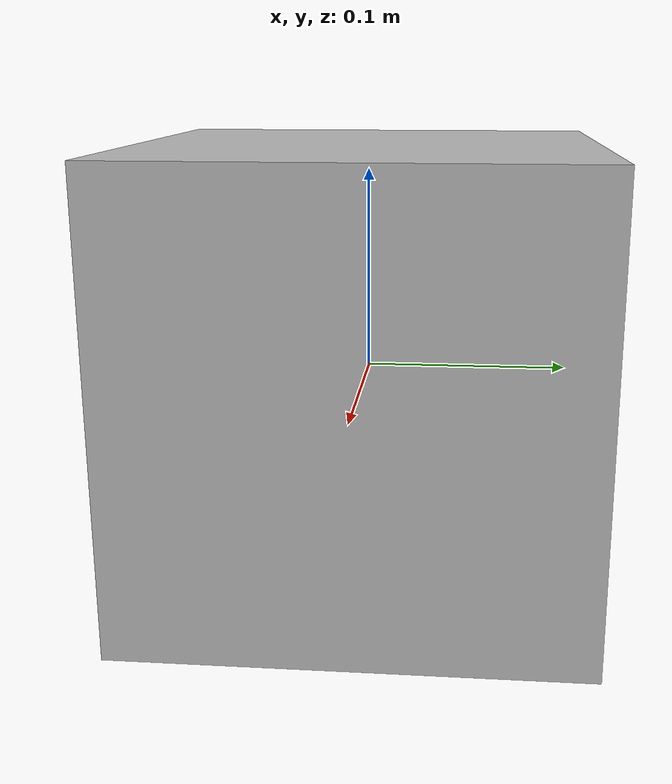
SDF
<?xml version='1.0'?>
  <sdf version='1.4'>
    <model name="box">
      <pose>0 0 0 0 0 0</pose>
      <link name='chassis'>
         <inertial>
          <mass>0.501</mass>
           <inertia>
              <ixx>0.0045</ixx>
              <ixy>0.0</ixy>
              <ixz>0.0</ixz>
              <iyy>0.0045</iyy>
              <iyz>0.0</iyz>
              <izz>0.0045</izz>
           </inertia>
         </inertial>

         <collision name='collision'>
           <geometry>
             <box>
               <size>0.225 0.225 0.225</size>
             </box>
           </geometry>
         </collision>

         <visual name='visual'>
           <geometry>
             <box>
               <size>0.225 0.225 0.225</size>
             </box>
           </geometry>
         </visual>
      </link>

  </model>
</sdf>
